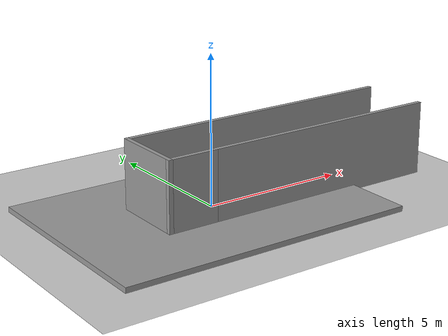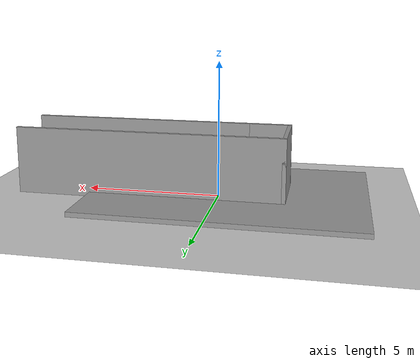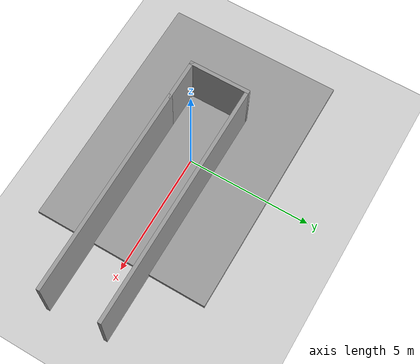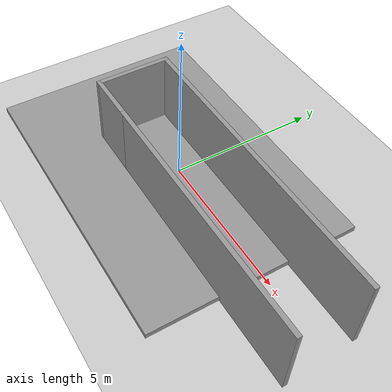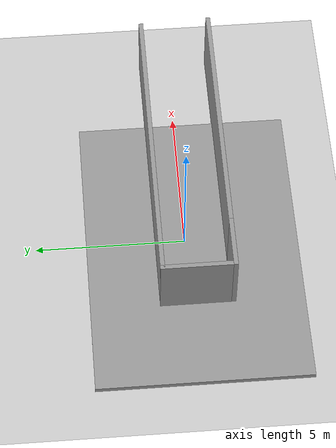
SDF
<sdf version="1.7">
 <world name="default">
  <light name="sun" type="directional">
   <pose>0 0 10 0 -0 0</pose>
   <diffuse>0.8 0.8 0.8 1</diffuse>
   <specular>0.2 0.2 0.2 1</specular>
   <attenuation>
    <range>1000</range>
    <constant>0.9</constant>
    <linear>0.01</linear>
    <quadratic>0.001</quadratic>
   </attenuation>
   <direction>-0.5 0.1 -0.9</direction>
   <spot><inner_angle>0</inner_angle><outer_angle>0</outer_angle><falloff>0</falloff></spot>
  </light>
  <model name="ground_plane">
   <static>1</static>
   <link name="link">
    <collision name="collision">
     <geometry><plane><normal>0 0 1</normal><size>100 100</size></plane></geometry>
     <surface>
      <contact><collide_bitmask>65535</collide_bitmask></contact>
      <friction><ode><mu>100</mu><mu2>50</mu2></ode></friction>
     </surface>
    </collision>
    <visual name="visual">
     <cast_shadows>0</cast_shadows>
     <geometry><plane><normal>0 0 1</normal><size>100 100</size></plane></geometry>
     <material>
      <script><uri>file://media/materials/scripts/gazebo.material</uri><name>Gazebo/Grey</name></script>
     </material>
    </visual>
   </link>
  </model>
  <gravity>0 0 -9.8</gravity>
  <magnetic_field>6e-06 2.3e-05 -4.2e-05</magnetic_field>
  <atmosphere type="adiabatic"/>
  <physics type="ode">
   <max_step_size>0.001</max_step_size>
   <real_time_factor>1</real_time_factor>
   <real_time_update_rate>1000</real_time_update_rate>
  </physics>
  <scene><ambient>0.4 0.4 0.4 1</ambient><background>0.7 0.7 0.7 1</background><shadows>1</shadows></scene>
  <spherical_coordinates>
   <surface_model>EARTH_WGS84</surface_model>
   <latitude_deg>0</latitude_deg>
   <longitude_deg>0</longitude_deg>
   <elevation>0</elevation>
   <heading_deg>0</heading_deg>
  </spherical_coordinates>
  <model name="Untitled_0">
   <link name="link_3">
    <inertial>
     <mass>12.7242</mass>
     <inertia><ixx>53.479</ixx><ixy>0</ixy><ixz>0</ixz><iyy>108.641</iyy><iyz>0</iyz><izz>162.054</izz></inertia>
    </inertial>
    <visual name="visual">
     <geometry><box><size>10.1206 7.09958 0.177088</size></box></geometry>
     <material>
      <lighting>1</lighting>
      <script><uri>file://media/materials/scripts/gazebo.material</uri><name>Gazebo/Grey</name></script>
      <shader type="pixel"/>
     </material>
    </visual>
    <collision name="collision">
     <geometry><box><size>10.1206 7.09958 0.177088</size></box></geometry>
     <surface>
      <friction>
       <ode><mu>1</mu><mu2>1</mu2><fdir1>0 0 0</fdir1><slip1>0</slip1><slip2>0</slip2></ode>
       <torsional>
        <coefficient>1</coefficient>
        <patch_radius>0</patch_radius>
        <surface_radius>0</surface_radius>
        <use_patch_radius>1</use_patch_radius>
        <ode><slip>0</slip></ode>
       </torsional>
      </friction>
      <bounce><restitution_coefficient>0</restitution_coefficient><threshold>1e+06</threshold></bounce>
      <contact>
       <collide_without_contact>0</collide_without_contact>
       <collide_without_contact_bitmask>1</collide_without_contact_bitmask>
       <collide_bitmask>1</collide_bitmask>
       <ode>
        <soft_cfm>0</soft_cfm>
        <soft_erp>0.2</soft_erp>
        <kp>1e+13</kp>
        <kd>1</kd>
        <max_vel>0.01</max_vel>
        <min_depth>0</min_depth>
       </ode>
       <bullet>
        <split_impulse>1</split_impulse>
        <split_impulse_penetration_threshold>-0.01</split_impulse_penetration_threshold>
        <soft_cfm>0</soft_cfm>
        <soft_erp>0.2</soft_erp>
        <kp>1e+13</kp>
        <kd>1</kd>
       </bullet>
      </contact>
     </surface>
    </collision>
   </link>
   <static>0</static>
   <pose>-0.383089 -0.239803 0.075522 0 -0 0</pose>
  </model>
  <model name="Untitled_1">
   <pose>2.505 -0.245 0 0 -0 0</pose>
   <link name="Wall_1">
    <collision name="Wall_1_Collision">
     <geometry><box><size>8.5 0.15 2.5</size></box></geometry>
     <pose>0 0 1.25 0 -0 0</pose>
    </collision>
    <visual name="Wall_1_Visual">
     <pose>0 0 1.25 0 -0 0</pose>
     <geometry><box><size>8.5 0.15 2.5</size></box></geometry>
     <material>
      <script><uri>file://media/materials/scripts/gazebo.material</uri><name>Gazebo/Grey</name></script>
      <ambient>1 1 1 1</ambient>
     </material>
     <meta><layer>0</layer></meta>
    </visual>
    <pose>0.8 -1.175 0 0 -0 0</pose>
   </link>
   <link name="Wall_4">
    <collision name="Wall_4_Collision">
     <geometry><box><size>1.75 0.15 2.5</size></box></geometry>
     <pose>0 0 1.25 0 -0 0</pose>
    </collision>
    <visual name="Wall_4_Visual">
     <pose>0 0 1.25 0 -0 0</pose>
     <geometry><box><size>1.75 0.15 2.5</size></box></geometry>
     <material>
      <script><uri>file://media/materials/scripts/gazebo.material</uri><name>Gazebo/Grey</name></script>
      <ambient>1 1 1 1</ambient>
     </material>
     <meta><layer>0</layer></meta>
    </visual>
    <pose>-4.175 -1.175 0 0 -0 3.14159</pose>
   </link>
   <link name="Wall_5">
    <collision name="Wall_5_Collision">
     <geometry><box><size>2.5 0.15 2.5</size></box></geometry>
     <pose>0 0 1.25 0 -0 0</pose>
    </collision>
    <visual name="Wall_5_Visual">
     <pose>0 0 1.25 0 -0 0</pose>
     <geometry><box><size>2.5 0.15 2.5</size></box></geometry>
     <material>
      <script><uri>file://media/materials/scripts/gazebo.material</uri><name>Gazebo/Grey</name></script>
      <ambient>1 1 1 1</ambient>
     </material>
     <meta><layer>0</layer></meta>
    </visual>
    <pose>-4.975 0 0 0 -0 1.5708</pose>
   </link>
   <link name="Wall_6">
    <collision name="Wall_6_Collision">
     <geometry><box><size>10 0.15 2.5</size></box></geometry>
     <pose>0 0 1.25 0 -0 0</pose>
    </collision>
    <visual name="Wall_6_Visual">
     <pose>0 0 1.25 0 -0 0</pose>
     <geometry><box><size>10 0.15 2.5</size></box></geometry>
     <material>
      <script><uri>file://media/materials/scripts/gazebo.material</uri><name>Gazebo/Grey</name></script>
      <ambient>1 1 1 1</ambient>
     </material>
     <meta><layer>0</layer></meta>
    </visual>
    <pose>-0.05 1.175 0 0 -0 0</pose>
   </link>
   <static>1</static>
  </model>
 </world>
</sdf>
